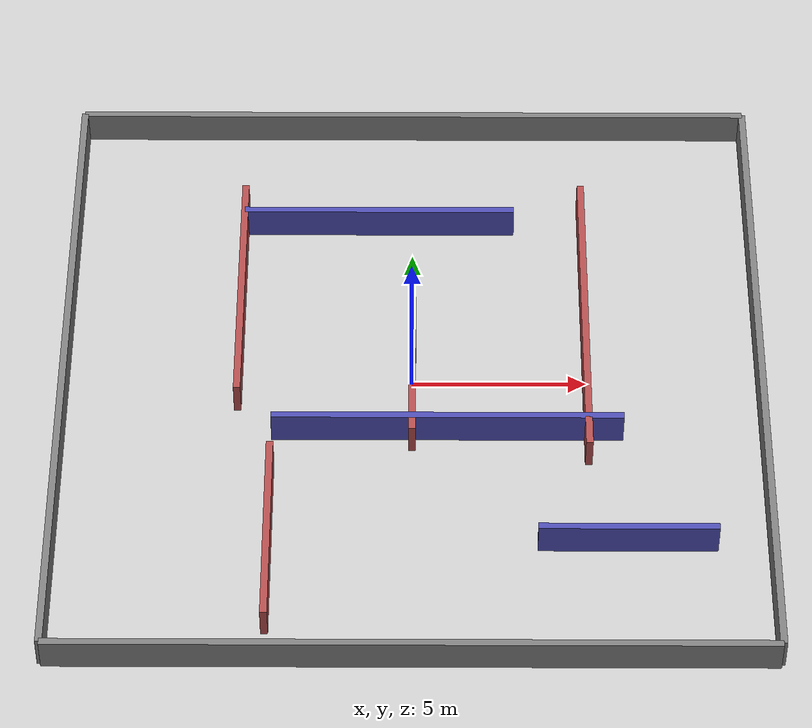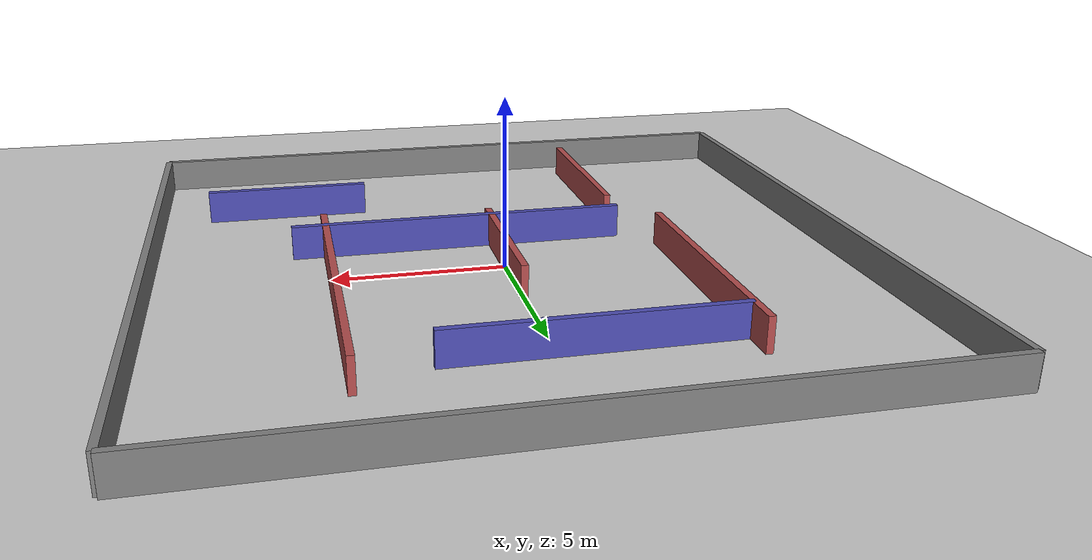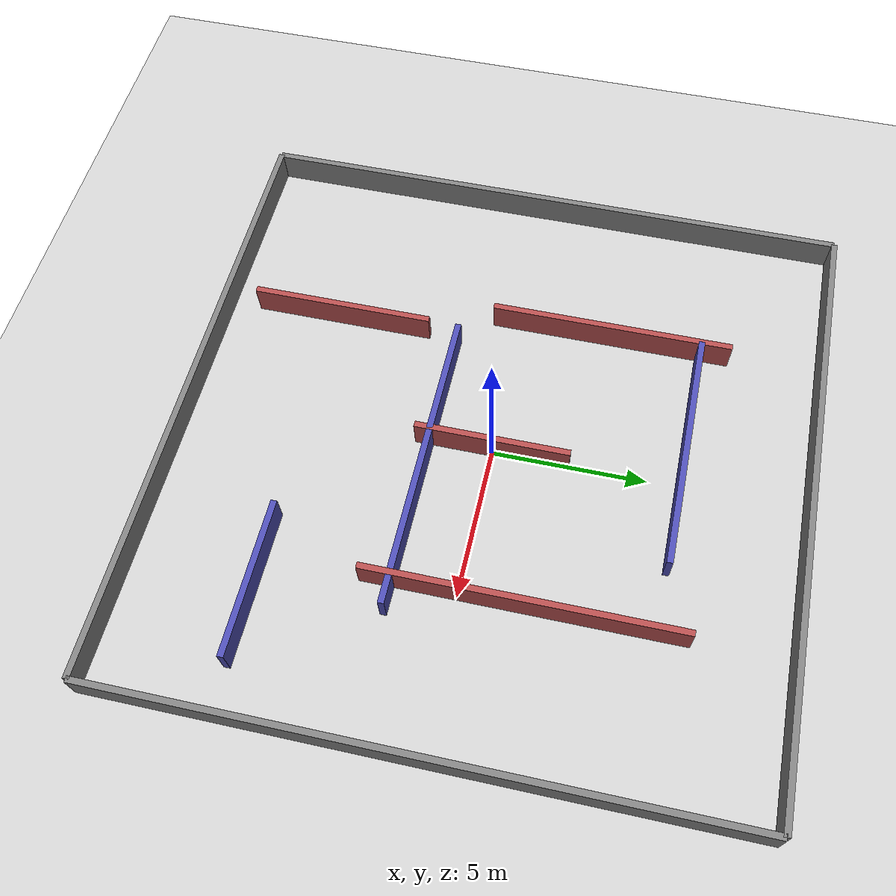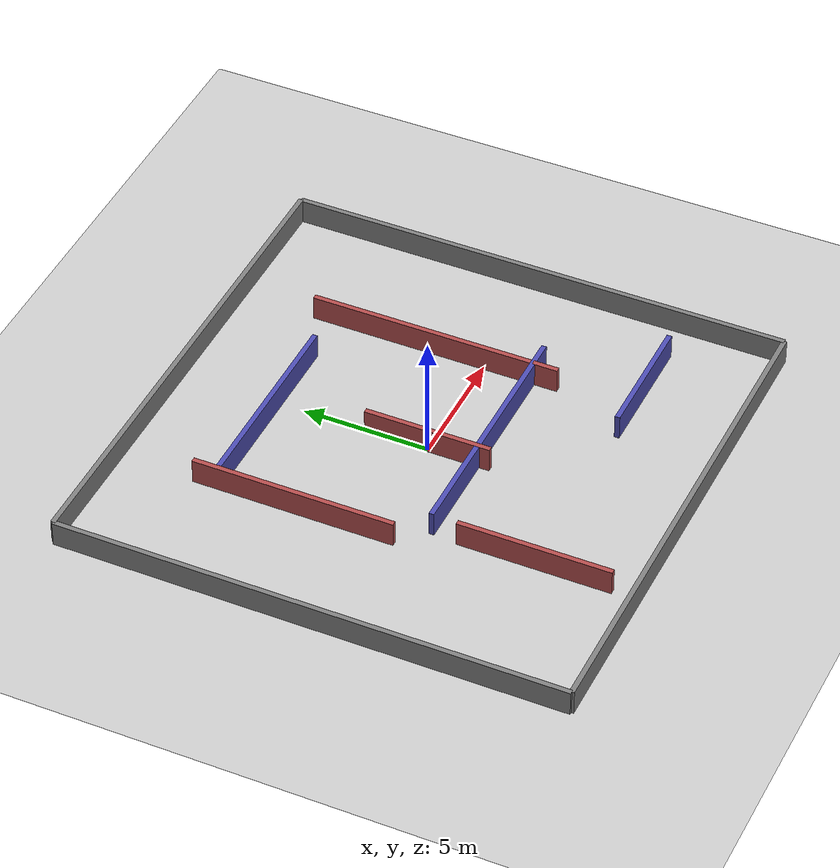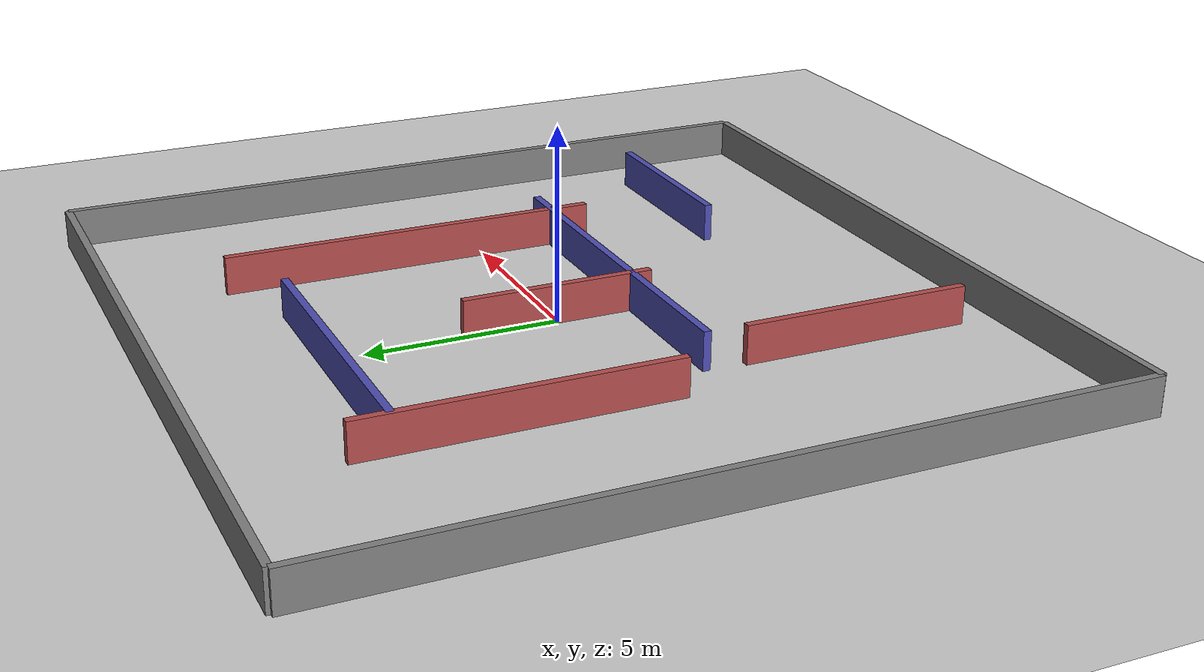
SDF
<?xml version="1.0" ?>
<sdf version="1.8">
  <world name="maze_world">

    <physics name="1ms" type="ignored">
      <max_step_size>0.001</max_step_size>
      <real_time_factor>1.0</real_time_factor>
    </physics>

    <plugin filename="gz-sim-physics-system" name="gz::sim::systems::Physics"></plugin>
    <plugin filename="gz-sim-user-commands-system" name="gz::sim::systems::UserCommands"></plugin>
    <plugin filename="gz-sim-scene-broadcaster-system" name="gz::sim::systems::SceneBroadcaster"></plugin>
    <plugin filename="gz-sim-sensors-system" name="gz::sim::systems::Sensors">
      <render_engine>ogre2</render_engine>
    </plugin>

    <light type="directional" name="sun">
      <cast_shadows>true</cast_shadows>
      <pose>0 0 10 0 0 0</pose>
      <diffuse>0.8 0.8 0.8 1</diffuse>
      <specular>0.2 0.2 0.2 1</specular>
      <attenuation>
        <range>1000</range>
        <constant>0.9</constant>
        <linear>0.01</linear>
        <quadratic>0.001</quadratic>
      </attenuation>
      <direction>-0.5 0.1 -0.9</direction>
    </light>

    <model name="ground_plane">
      <static>true</static>
      <link name="link">
        <collision name="collision">
          <geometry>
            <plane>
              <normal>0 0 1</normal>
              <size>100 100</size>
            </plane>
          </geometry>
        </collision>
        <visual name="visual">
          <geometry>
            <plane>
              <normal>0 0 1</normal>
              <size>100 100</size>
            </plane>
          </geometry>
          <material>
            <ambient>0.8 0.8 0.8 1</ambient>
            <diffuse>0.8 0.8 0.8 1</diffuse>
            <specular>0.8 0.8 0.8 1</specular>
          </material>
        </visual>
      </link>
    </model>

    <model name="wall_north">
      <static>true</static>
      <pose>0 10 0.5 0 0 0</pose>
      <link name="link">
        <collision name="collision">
          <geometry>
            <box>
              <size>20 0.2 1</size>
            </box>
          </geometry>
        </collision>
        <visual name="visual">
          <geometry>
            <box>
              <size>20 0.2 1</size>
            </box>
          </geometry>
          <material>
            <ambient>0.5 0.5 0.5 1</ambient>
            <diffuse>0.5 0.5 0.5 1</diffuse>
          </material>
        </visual>
      </link>
    </model>

    <model name="wall_south">
      <static>true</static>
      <pose>0 -10 0.5 0 0 0</pose>
      <link name="link">
        <collision name="collision">
          <geometry>
            <box>
              <size>20 0.2 1</size>
            </box>
          </geometry>
        </collision>
        <visual name="visual">
          <geometry>
            <box>
              <size>20 0.2 1</size>
            </box>
          </geometry>
          <material>
            <ambient>0.5 0.5 0.5 1</ambient>
            <diffuse>0.5 0.5 0.5 1</diffuse>
          </material>
        </visual>
      </link>
    </model>

    <model name="wall_east">
      <static>true</static>
      <pose>10 0 0.5 0 0 0</pose>
      <link name="link">
        <collision name="collision">
          <geometry>
            <box>
              <size>0.2 20 1</size>
            </box>
          </geometry>
        </collision>
        <visual name="visual">
          <geometry>
            <box>
              <size>0.2 20 1</size>
            </box>
          </geometry>
          <material>
            <ambient>0.5 0.5 0.5 1</ambient>
            <diffuse>0.5 0.5 0.5 1</diffuse>
          </material>
        </visual>
      </link>
    </model>

    <model name="wall_west">
      <static>true</static>
      <pose>-10 0 0.5 0 0 0</pose>
      <link name="link">
        <collision name="collision">
          <geometry>
            <box>
              <size>0.2 20 1</size>
            </box>
          </geometry>
        </collision>
        <visual name="visual">
          <geometry>
            <box>
              <size>0.2 20 1</size>
            </box>
          </geometry>
          <material>
            <ambient>0.5 0.5 0.5 1</ambient>
            <diffuse>0.5 0.5 0.5 1</diffuse>
          </material>
        </visual>
      </link>
    </model>

    <model name="maze_wall_1">
      <static>true</static>
      <pose>-5 3 0.5 0 0 0</pose>
      <link name="link">
        <collision name="collision">
          <geometry>
            <box>
              <size>0.2 8 1</size>
            </box>
          </geometry>
        </collision>
        <visual name="visual">
          <geometry>
            <box>
              <size>0.2 8 1</size>
            </box>
          </geometry>
          <material>
            <ambient>0.7 0.3 0.3 1</ambient>
            <diffuse>0.7 0.3 0.3 1</diffuse>
          </material>
        </visual>
      </link>
    </model>

    <model name="maze_wall_2">
      <static>true</static>
      <pose>-1 6 0.5 0 0 0</pose>
      <link name="link">
        <collision name="collision">
          <geometry>
            <box>
              <size>8 0.2 1</size>
            </box>
          </geometry>
        </collision>
        <visual name="visual">
          <geometry>
            <box>
              <size>8 0.2 1</size>
            </box>
          </geometry>
          <material>
            <ambient>0.3 0.3 0.7 1</ambient>
            <diffuse>0.3 0.3 0.7 1</diffuse>
          </material>
        </visual>
      </link>
    </model>

    <model name="maze_wall_3">
      <static>true</static>
      <pose>5 2 0.5 0 0 0</pose>
      <link name="link">
        <collision name="collision">
          <geometry>
            <box>
              <size>0.2 10 1</size>
            </box>
          </geometry>
        </collision>
        <visual name="visual">
          <geometry>
            <box>
              <size>0.2 10 1</size>
            </box>
          </geometry>
          <material>
            <ambient>0.7 0.3 0.3 1</ambient>
            <diffuse>0.7 0.3 0.3 1</diffuse>
          </material>
        </visual>
      </link>
    </model>

    <model name="maze_wall_4">
      <static>true</static>
      <pose>1 -2 0.5 0 0 0</pose>
      <link name="link">
        <collision name="collision">
          <geometry>
            <box>
              <size>10 0.2 1</size>
            </box>
          </geometry>
        </collision>
        <visual name="visual">
          <geometry>
            <box>
              <size>10 0.2 1</size>
            </box>
          </geometry>
          <material>
            <ambient>0.3 0.3 0.7 1</ambient>
            <diffuse>0.3 0.3 0.7 1</diffuse>
          </material>
        </visual>
      </link>
    </model>

    <model name="maze_wall_5">
      <static>true</static>
      <pose>-4 -6 0.5 0 0 0</pose>
      <link name="link">
        <collision name="collision">
          <geometry>
            <box>
              <size>0.2 6 1</size>
            </box>
          </geometry>
        </collision>
        <visual name="visual">
          <geometry>
            <box>
              <size>0.2 6 1</size>
            </box>
          </geometry>
          <material>
            <ambient>0.7 0.3 0.3 1</ambient>
            <diffuse>0.7 0.3 0.3 1</diffuse>
          </material>
        </visual>
      </link>
    </model>

    <model name="maze_wall_6">
      <static>true</static>
      <pose>6 -6 0.5 0 0 0</pose>
      <link name="link">
        <collision name="collision">
          <geometry>
            <box>
              <size>5 0.2 1</size>
            </box>
          </geometry>
        </collision>
        <visual name="visual">
          <geometry>
            <box>
              <size>5 0.2 1</size>
            </box>
          </geometry>
          <material>
            <ambient>0.3 0.3 0.7 1</ambient>
            <diffuse>0.3 0.3 0.7 1</diffuse>
          </material>
        </visual>
      </link>
    </model>

    <model name="maze_wall_7">
      <static>true</static>
      <pose>0 0 0.5 0 0 0</pose>
      <link name="link">
        <collision name="collision">
          <geometry>
            <box>
              <size>0.2 5 1</size>
            </box>
          </geometry>
        </collision>
        <visual name="visual">
          <geometry>
            <box>
              <size>0.2 5 1</size>
            </box>
          </geometry>
          <material>
            <ambient>0.7 0.3 0.3 1</ambient>
            <diffuse>0.7 0.3 0.3 1</diffuse>
          </material>
        </visual>
      </link>
    </model>
  </world>
</sdf>
